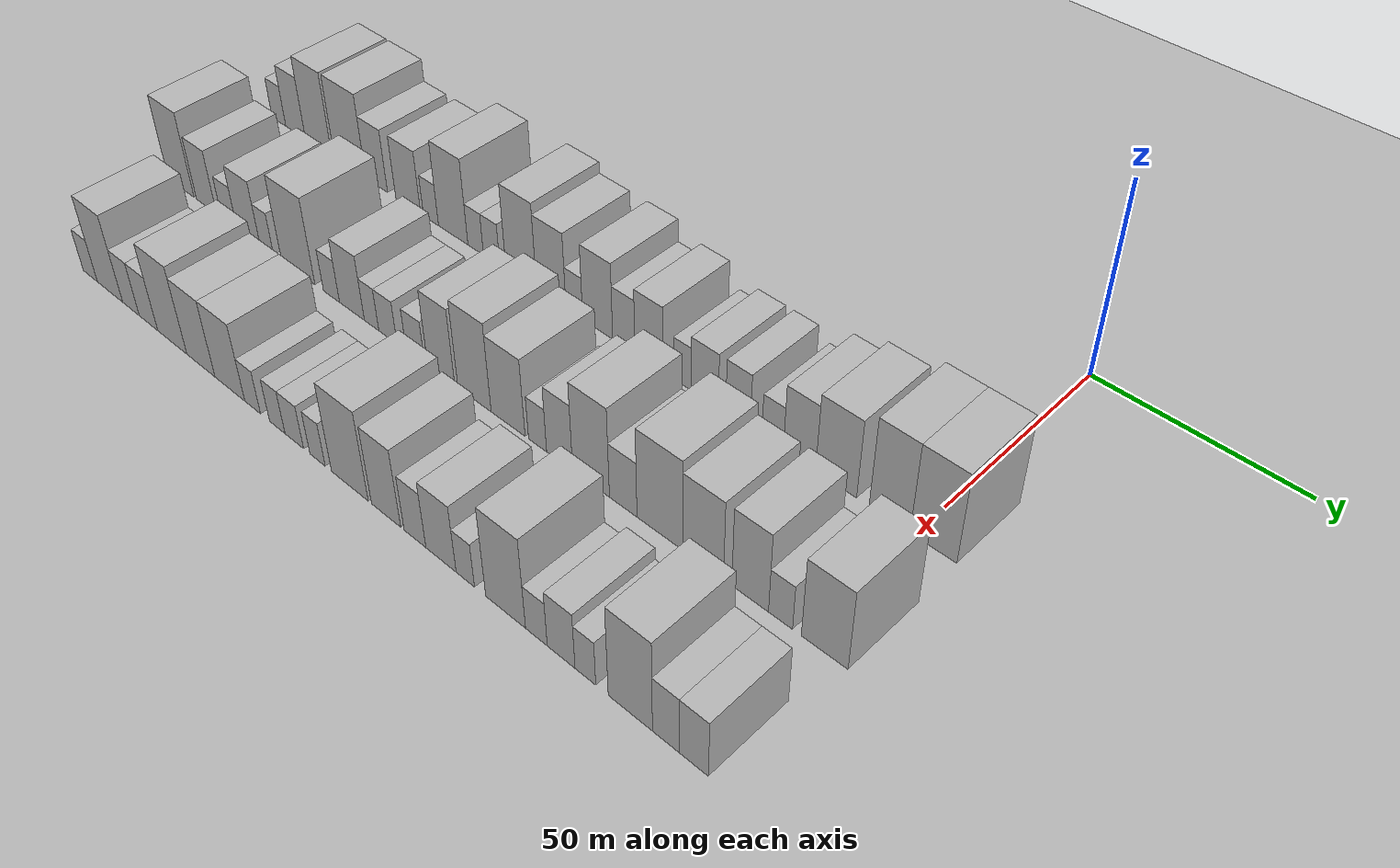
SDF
<sdf version="1.6">
 <world name="default">
  <include><name>ground_plane_1</name><uri>model://HANNAS_ground_plane</uri></include>
  <include>
   <name>ground_plane_2</name>
   <uri>model://HANNAS_ground_plane</uri>
   <pose>100 0 0  0 0 0</pose>
  </include>
  <model name="building_37">
   <static>1</static>
   <pose>50.0000 -194.2799 0 0.000000 0.000000 0.000000</pose>
   <link name="link">
    <pose>0 0 6.00 0 0 0</pose>
    <collision name="collision"><geometry><box><size>20.0000 5.5302 12.0000</size></box></geometry></collision>
    <visual name="visual">
     <cast_shadows>0</cast_shadows>
     <geometry><box><size>20.0000 5.5302 12.0000</size></box></geometry>
     <material>
      <script>
       <uri>model://HANNAS_wall/materials/scripts</uri>
       <uri>model://HANNAS_wall/materials/textures</uri>
       <name>vrc/HANNAS_wall</name>
      </script>
     </material>
    </visual>
   </link>
  </model>
  <model name="building_38">
   <static>1</static>
   <pose>50.0000 -187.5886 0 0.000000 0.000000 0.000000</pose>
   <link name="link">
    <pose>0 0 9.00 0 0 0</pose>
    <collision name="collision"><geometry><box><size>20.0000 7.8523 18.0000</size></box></geometry></collision>
    <visual name="visual">
     <cast_shadows>0</cast_shadows>
     <geometry><box><size>20.0000 7.8523 18.0000</size></box></geometry>
     <material>
      <script>
       <uri>model://HANNAS_wall/materials/scripts</uri>
       <uri>model://HANNAS_wall/materials/textures</uri>
       <name>vrc/HANNAS_wall</name>
      </script>
     </material>
    </visual>
   </link>
  </model>
  <model name="building_39">
   <static>1</static>
   <pose>50.0000 -178.5077 0 0.000000 0.000000 0.000000</pose>
   <link name="link">
    <pose>0 0 12.00 0 0 0</pose>
    <collision name="collision"><geometry><box><size>20.0000 10.3095 24.0000</size></box></geometry></collision>
    <visual name="visual">
     <cast_shadows>0</cast_shadows>
     <geometry><box><size>20.0000 10.3095 24.0000</size></box></geometry>
     <material>
      <script>
       <uri>model://HANNAS_wall/materials/scripts</uri>
       <uri>model://HANNAS_wall/materials/textures</uri>
       <name>vrc/HANNAS_wall</name>
      </script>
     </material>
    </visual>
   </link>
  </model>
  <model name="building_40">
   <static>1</static>
   <pose>50.0000 -166.3984 0 0.000000 0.000000 0.000000</pose>
   <link name="link">
    <pose>0 0 12.00 0 0 0</pose>
    <collision name="collision"><geometry><box><size>20.0000 11.9091 24.0000</size></box></geometry></collision>
    <visual name="visual">
     <cast_shadows>0</cast_shadows>
     <geometry><box><size>20.0000 11.9091 24.0000</size></box></geometry>
     <material>
      <script>
       <uri>model://HANNAS_wall/materials/scripts</uri>
       <uri>model://HANNAS_wall/materials/textures</uri>
       <name>vrc/HANNAS_wall</name>
      </script>
     </material>
    </visual>
   </link>
  </model>
  <model name="building_41">
   <static>1</static>
   <pose>50.0000 -156.4728 0 0.000000 0.000000 0.000000</pose>
   <link name="link">
    <pose>0 0 9.00 0 0 0</pose>
    <collision name="collision"><geometry><box><size>20.0000 7.9420 18.0000</size></box></geometry></collision>
    <visual name="visual">
     <cast_shadows>0</cast_shadows>
     <geometry><box><size>20.0000 7.9420 18.0000</size></box></geometry>
     <material>
      <script>
       <uri>model://HANNAS_wall/materials/scripts</uri>
       <uri>model://HANNAS_wall/materials/textures</uri>
       <name>vrc/HANNAS_wall</name>
      </script>
     </material>
    </visual>
   </link>
  </model>
  <model name="building_42">
   <static>1</static>
   <pose>50.0000 -145.0451 0 0.000000 0.000000 0.000000</pose>
   <link name="link">
    <pose>0 0 9.00 0 0 0</pose>
    <collision name="collision"><geometry><box><size>20.0000 8.9133 18.0000</size></box></geometry></collision>
    <visual name="visual">
     <cast_shadows>0</cast_shadows>
     <geometry><box><size>20.0000 8.9133 18.0000</size></box></geometry>
     <material>
      <script>
       <uri>model://HANNAS_wall/materials/scripts</uri>
       <uri>model://HANNAS_wall/materials/textures</uri>
       <name>vrc/HANNAS_wall</name>
      </script>
     </material>
    </visual>
   </link>
  </model>
  <model name="building_43">
   <static>1</static>
   <pose>50.0000 -136.9729 0 0.000000 0.000000 0.000000</pose>
   <link name="link">
    <pose>0 0 6.00 0 0 0</pose>
    <collision name="collision"><geometry><box><size>20.0000 5.2310 12.0000</size></box></geometry></collision>
    <visual name="visual">
     <cast_shadows>0</cast_shadows>
     <geometry><box><size>20.0000 5.2310 12.0000</size></box></geometry>
     <material>
      <script>
       <uri>model://HANNAS_wall/materials/scripts</uri>
       <uri>model://HANNAS_wall/materials/textures</uri>
       <name>vrc/HANNAS_wall</name>
      </script>
     </material>
    </visual>
   </link>
  </model>
  <model name="building_44">
   <static>1</static>
   <pose>50.0000 -129.3180 0 0.000000 0.000000 0.000000</pose>
   <link name="link">
    <pose>0 0 12.00 0 0 0</pose>
    <collision name="collision"><geometry><box><size>20.0000 10.0789 24.0000</size></box></geometry></collision>
    <visual name="visual">
     <cast_shadows>0</cast_shadows>
     <geometry><box><size>20.0000 10.0789 24.0000</size></box></geometry>
     <material>
      <script>
       <uri>model://HANNAS_wall/materials/scripts</uri>
       <uri>model://HANNAS_wall/materials/textures</uri>
       <name>vrc/HANNAS_wall</name>
      </script>
     </material>
    </visual>
   </link>
  </model>
  <model name="building_45">
   <static>1</static>
   <pose>50.0000 -121.6777 0 0.000000 0.000000 0.000000</pose>
   <link name="link">
    <pose>0 0 6.00 0 0 0</pose>
    <collision name="collision"><geometry><box><size>20.0000 5.2017 12.0000</size></box></geometry></collision>
    <visual name="visual">
     <cast_shadows>0</cast_shadows>
     <geometry><box><size>20.0000 5.2017 12.0000</size></box></geometry>
     <material>
      <script>
       <uri>model://HANNAS_wall/materials/scripts</uri>
       <uri>model://HANNAS_wall/materials/textures</uri>
       <name>vrc/HANNAS_wall</name>
      </script>
     </material>
    </visual>
   </link>
  </model>
  <model name="building_46">
   <static>1</static>
   <pose>50.0000 -116.3728 0 0.000000 0.000000 0.000000</pose>
   <link name="link">
    <pose>0 0 6.00 0 0 0</pose>
    <collision name="collision"><geometry><box><size>20.0000 5.4082 12.0000</size></box></geometry></collision>
    <visual name="visual">
     <cast_shadows>0</cast_shadows>
     <geometry><box><size>20.0000 5.4082 12.0000</size></box></geometry>
     <material>
      <script>
       <uri>model://HANNAS_wall/materials/scripts</uri>
       <uri>model://HANNAS_wall/materials/textures</uri>
       <name>vrc/HANNAS_wall</name>
      </script>
     </material>
    </visual>
   </link>
  </model>
  <model name="building_47">
   <static>1</static>
   <pose>50.0000 -106.7435 0 0.000000 0.000000 0.000000</pose>
   <link name="link">
    <pose>0 0 12.00 0 0 0</pose>
    <collision name="collision"><geometry><box><size>20.0000 9.8505 24.0000</size></box></geometry></collision>
    <visual name="visual">
     <cast_shadows>0</cast_shadows>
     <geometry><box><size>20.0000 9.8505 24.0000</size></box></geometry>
     <material>
      <script>
       <uri>model://HANNAS_wall/materials/scripts</uri>
       <uri>model://HANNAS_wall/materials/textures</uri>
       <name>vrc/HANNAS_wall</name>
      </script>
     </material>
    </visual>
   </link>
  </model>
  <model name="building_48">
   <static>1</static>
   <pose>50.0000 -97.2325 0 0.000000 0.000000 0.000000</pose>
   <link name="link">
    <pose>0 0 10.50 0 0 0</pose>
    <collision name="collision"><geometry><box><size>20.0000 9.1715 21.0000</size></box></geometry></collision>
    <visual name="visual">
     <cast_shadows>0</cast_shadows>
     <geometry><box><size>20.0000 9.1715 21.0000</size></box></geometry>
     <material>
      <script>
       <uri>model://HANNAS_wall/materials/scripts</uri>
       <uri>model://HANNAS_wall/materials/textures</uri>
       <name>vrc/HANNAS_wall</name>
      </script>
     </material>
    </visual>
   </link>
  </model>
  <model name="building_49">
   <static>1</static>
   <pose>50.0000 -90.0845 0 0.000000 0.000000 0.000000</pose>
   <link name="link">
    <pose>0 0 6.00 0 0 0</pose>
    <collision name="collision"><geometry><box><size>20.0000 5.1245 12.0000</size></box></geometry></collision>
    <visual name="visual">
     <cast_shadows>0</cast_shadows>
     <geometry><box><size>20.0000 5.1245 12.0000</size></box></geometry>
     <material>
      <script>
       <uri>model://HANNAS_wall/materials/scripts</uri>
       <uri>model://HANNAS_wall/materials/textures</uri>
       <name>vrc/HANNAS_wall</name>
      </script>
     </material>
    </visual>
   </link>
  </model>
  <model name="building_50">
   <static>1</static>
   <pose>50.0000 -83.0336 0 0.000000 0.000000 0.000000</pose>
   <link name="link">
    <pose>0 0 10.50 0 0 0</pose>
    <collision name="collision"><geometry><box><size>20.0000 8.9772 21.0000</size></box></geometry></collision>
    <visual name="visual">
     <cast_shadows>0</cast_shadows>
     <geometry><box><size>20.0000 8.9772 21.0000</size></box></geometry>
     <material>
      <script>
       <uri>model://HANNAS_wall/materials/scripts</uri>
       <uri>model://HANNAS_wall/materials/textures</uri>
       <name>vrc/HANNAS_wall</name>
      </script>
     </material>
    </visual>
   </link>
  </model>
  <model name="building_51">
   <static>1</static>
   <pose>50.0000 -75.2911 0 0.000000 0.000000 0.000000</pose>
   <link name="link">
    <pose>0 0 7.50 0 0 0</pose>
    <collision name="collision"><geometry><box><size>20.0000 6.5078 15.0000</size></box></geometry></collision>
    <visual name="visual">
     <cast_shadows>0</cast_shadows>
     <geometry><box><size>20.0000 6.5078 15.0000</size></box></geometry>
     <material>
      <script>
       <uri>model://HANNAS_wall/materials/scripts</uri>
       <uri>model://HANNAS_wall/materials/textures</uri>
       <name>vrc/HANNAS_wall</name>
      </script>
     </material>
    </visual>
   </link>
  </model>
  <model name="building_52">
   <static>1</static>
   <pose>50.0000 -68.0344 0 0.000000 0.000000 0.000000</pose>
   <link name="link">
    <pose>0 0 9.00 0 0 0</pose>
    <collision name="collision"><geometry><box><size>20.0000 8.0055 18.0000</size></box></geometry></collision>
    <visual name="visual">
     <cast_shadows>0</cast_shadows>
     <geometry><box><size>20.0000 8.0055 18.0000</size></box></geometry>
     <material>
      <script>
       <uri>model://HANNAS_wall/materials/scripts</uri>
       <uri>model://HANNAS_wall/materials/textures</uri>
       <name>vrc/HANNAS_wall</name>
      </script>
     </material>
    </visual>
   </link>
  </model>
  <model name="building_53">
   <static>1</static>
   <pose>50.0000 -58.5989 0 0.000000 0.000000 0.000000</pose>
   <link name="link">
    <pose>0 0 6.00 0 0 0</pose>
    <collision name="collision"><geometry><box><size>20.0000 4.8654 12.0000</size></box></geometry></collision>
    <visual name="visual">
     <cast_shadows>0</cast_shadows>
     <geometry><box><size>20.0000 4.8654 12.0000</size></box></geometry>
     <material>
      <script>
       <uri>model://HANNAS_wall/materials/scripts</uri>
       <uri>model://HANNAS_wall/materials/textures</uri>
       <name>vrc/HANNAS_wall</name>
      </script>
     </material>
    </visual>
   </link>
  </model>
  <model name="building_54">
   <static>1</static>
   <pose>50.0000 -52.4347 0 0.000000 0.000000 0.000000</pose>
   <link name="link">
    <pose>0 0 7.50 0 0 0</pose>
    <collision name="collision"><geometry><box><size>20.0000 7.4630 15.0000</size></box></geometry></collision>
    <visual name="visual">
     <cast_shadows>0</cast_shadows>
     <geometry><box><size>20.0000 7.4630 15.0000</size></box></geometry>
     <material>
      <script>
       <uri>model://HANNAS_wall/materials/scripts</uri>
       <uri>model://HANNAS_wall/materials/textures</uri>
       <name>vrc/HANNAS_wall</name>
      </script>
     </material>
    </visual>
   </link>
  </model>
  <model name="building_55">
   <static>1</static>
   <pose>50.0000 -43.4236 0 0.000000 0.000000 0.000000</pose>
   <link name="link">
    <pose>0 0 7.50 0 0 0</pose>
    <collision name="collision"><geometry><box><size>20.0000 6.5594 15.0000</size></box></geometry></collision>
    <visual name="visual">
     <cast_shadows>0</cast_shadows>
     <geometry><box><size>20.0000 6.5594 15.0000</size></box></geometry>
     <material>
      <script>
       <uri>model://HANNAS_wall/materials/scripts</uri>
       <uri>model://HANNAS_wall/materials/textures</uri>
       <name>vrc/HANNAS_wall</name>
      </script>
     </material>
    </visual>
   </link>
  </model>
  <model name="building_56">
   <static>1</static>
   <pose>50.0000 -34.3570 0 0.000000 0.000000 0.000000</pose>
   <link name="link">
    <pose>0 0 6.00 0 0 0</pose>
    <collision name="collision"><geometry><box><size>20.0000 5.5738 12.0000</size></box></geometry></collision>
    <visual name="visual">
     <cast_shadows>0</cast_shadows>
     <geometry><box><size>20.0000 5.5738 12.0000</size></box></geometry>
     <material>
      <script>
       <uri>model://HANNAS_wall/materials/scripts</uri>
       <uri>model://HANNAS_wall/materials/textures</uri>
       <name>vrc/HANNAS_wall</name>
      </script>
     </material>
    </visual>
   </link>
  </model>
  <model name="building_57">
   <static>1</static>
   <pose>50.0000 -27.4977 0 0.000000 0.000000 0.000000</pose>
   <link name="link">
    <pose>0 0 9.00 0 0 0</pose>
    <collision name="collision"><geometry><box><size>20.0000 8.1449 18.0000</size></box></geometry></collision>
    <visual name="visual">
     <cast_shadows>0</cast_shadows>
     <geometry><box><size>20.0000 8.1449 18.0000</size></box></geometry>
     <material>
      <script>
       <uri>model://HANNAS_wall/materials/scripts</uri>
       <uri>model://HANNAS_wall/materials/textures</uri>
       <name>vrc/HANNAS_wall</name>
      </script>
     </material>
    </visual>
   </link>
  </model>
  <model name="building_58">
   <static>1</static>
   <pose>50.0000 -18.3838 0 0.000000 0.000000 0.000000</pose>
   <link name="link">
    <pose>0 0 10.50 0 0 0</pose>
    <collision name="collision"><geometry><box><size>20.0000 10.0829 21.0000</size></box></geometry></collision>
    <visual name="visual">
     <cast_shadows>0</cast_shadows>
     <geometry><box><size>20.0000 10.0829 21.0000</size></box></geometry>
     <material>
      <script>
       <uri>model://HANNAS_wall/materials/scripts</uri>
       <uri>model://HANNAS_wall/materials/textures</uri>
       <name>vrc/HANNAS_wall</name>
      </script>
     </material>
    </visual>
   </link>
  </model>
  <model name="building_59">
   <static>1</static>
   <pose>50.0000 -5.5306 0 0.000000 0.000000 0.000000</pose>
   <link name="link">
    <pose>0 0 12.00 0 0 0</pose>
    <collision name="collision"><geometry><box><size>20.0000 9.6235 24.0000</size></box></geometry></collision>
    <visual name="visual">
     <cast_shadows>0</cast_shadows>
     <geometry><box><size>20.0000 9.6235 24.0000</size></box></geometry>
     <material>
      <script>
       <uri>model://HANNAS_wall/materials/scripts</uri>
       <uri>model://HANNAS_wall/materials/textures</uri>
       <name>vrc/HANNAS_wall</name>
      </script>
     </material>
    </visual>
   </link>
  </model>
  <model name="building_60">
   <static>1</static>
   <pose>50.0000 4.6134 0 0.000000 0.000000 0.000000</pose>
   <link name="link">
    <pose>0 0 12.00 0 0 0</pose>
    <collision name="collision"><geometry><box><size>20.0000 10.6645 24.0000</size></box></geometry></collision>
    <visual name="visual">
     <cast_shadows>0</cast_shadows>
     <geometry><box><size>20.0000 10.6645 24.0000</size></box></geometry>
     <material>
      <script>
       <uri>model://HANNAS_wall/materials/scripts</uri>
       <uri>model://HANNAS_wall/materials/textures</uri>
       <name>vrc/HANNAS_wall</name>
      </script>
     </material>
    </visual>
   </link>
  </model>
  <model name="building_160">
   <static>1</static>
   <pose>82.0000 -188.8581 0 0.000000 0.000000 0.000000</pose>
   <link name="link">
    <pose>0 0 12.00 0 0 0</pose>
    <collision name="collision"><geometry><box><size>20.0000 10.4176 24.0000</size></box></geometry></collision>
    <visual name="visual">
     <cast_shadows>0</cast_shadows>
     <geometry><box><size>20.0000 10.4176 24.0000</size></box></geometry>
     <material>
      <script>
       <uri>model://HANNAS_wall/materials/scripts</uri>
       <uri>model://HANNAS_wall/materials/textures</uri>
       <name>vrc/HANNAS_wall</name>
      </script>
     </material>
    </visual>
   </link>
  </model>
  <model name="building_161">
   <static>1</static>
   <pose>82.0000 -178.6854 0 0.000000 0.000000 0.000000</pose>
   <link name="link">
    <pose>0 0 9.00 0 0 0</pose>
    <collision name="collision"><geometry><box><size>20.0000 7.9278 18.0000</size></box></geometry></collision>
    <visual name="visual">
     <cast_shadows>0</cast_shadows>
     <geometry><box><size>20.0000 7.9278 18.0000</size></box></geometry>
     <material>
      <script>
       <uri>model://HANNAS_wall/materials/scripts</uri>
       <uri>model://HANNAS_wall/materials/textures</uri>
       <name>vrc/HANNAS_wall</name>
      </script>
     </material>
    </visual>
   </link>
  </model>
  <model name="building_162">
   <static>1</static>
   <pose>82.0000 -169.7646 0 0.000000 0.000000 0.000000</pose>
   <link name="link">
    <pose>0 0 6.00 0 0 0</pose>
    <collision name="collision"><geometry><box><size>20.0000 5.9140 12.0000</size></box></geometry></collision>
    <visual name="visual">
     <cast_shadows>0</cast_shadows>
     <geometry><box><size>20.0000 5.9140 12.0000</size></box></geometry>
     <material>
      <script>
       <uri>model://HANNAS_wall/materials/scripts</uri>
       <uri>model://HANNAS_wall/materials/textures</uri>
       <name>vrc/HANNAS_wall</name>
      </script>
     </material>
    </visual>
   </link>
  </model>
  <model name="building_163">
   <static>1</static>
   <pose>82.0000 -162.4492 0 0.000000 0.000000 0.000000</pose>
   <link name="link">
    <pose>0 0 9.00 0 0 0</pose>
    <collision name="collision"><geometry><box><size>20.0000 8.7168 18.0000</size></box></geometry></collision>
    <visual name="visual">
     <cast_shadows>0</cast_shadows>
     <geometry><box><size>20.0000 8.7168 18.0000</size></box></geometry>
     <material>
      <script>
       <uri>model://HANNAS_wall/materials/scripts</uri>
       <uri>model://HANNAS_wall/materials/textures</uri>
       <name>vrc/HANNAS_wall</name>
      </script>
     </material>
    </visual>
   </link>
  </model>
  <model name="building_164">
   <static>1</static>
   <pose>82.0000 -155.5896 0 0.000000 0.000000 0.000000</pose>
   <link name="link">
    <pose>0 0 6.00 0 0 0</pose>
    <collision name="collision"><geometry><box><size>20.0000 5.0024 12.0000</size></box></geometry></collision>
    <visual name="visual">
     <cast_shadows>0</cast_shadows>
     <geometry><box><size>20.0000 5.0024 12.0000</size></box></geometry>
     <material>
      <script>
       <uri>model://HANNAS_wall/materials/scripts</uri>
       <uri>model://HANNAS_wall/materials/textures</uri>
       <name>vrc/HANNAS_wall</name>
      </script>
     </material>
    </visual>
   </link>
  </model>
  <model name="building_165">
   <static>1</static>
   <pose>82.0000 -144.1120 0 0.000000 0.000000 0.000000</pose>
   <link name="link">
    <pose>0 0 12.00 0 0 0</pose>
    <collision name="collision"><geometry><box><size>20.0000 11.9527 24.0000</size></box></geometry></collision>
    <visual name="visual">
     <cast_shadows>0</cast_shadows>
     <geometry><box><size>20.0000 11.9527 24.0000</size></box></geometry>
     <material>
      <script>
       <uri>model://HANNAS_wall/materials/scripts</uri>
       <uri>model://HANNAS_wall/materials/textures</uri>
       <name>vrc/HANNAS_wall</name>
      </script>
     </material>
    </visual>
   </link>
  </model>
  <model name="building_166">
   <static>1</static>
   <pose>82.0000 -132.3422 0 0.000000 0.000000 0.000000</pose>
   <link name="link">
    <pose>0 0 6.00 0 0 0</pose>
    <collision name="collision"><geometry><box><size>20.0000 5.5869 12.0000</size></box></geometry></collision>
    <visual name="visual">
     <cast_shadows>0</cast_shadows>
     <geometry><box><size>20.0000 5.5869 12.0000</size></box></geometry>
     <material>
      <script>
       <uri>model://HANNAS_wall/materials/scripts</uri>
       <uri>model://HANNAS_wall/materials/textures</uri>
       <name>vrc/HANNAS_wall</name>
      </script>
     </material>
    </visual>
   </link>
  </model>
  <model name="building_167">
   <static>1</static>
   <pose>82.0000 -125.3173 0 0.000000 0.000000 0.000000</pose>
   <link name="link">
    <pose>0 0 9.00 0 0 0</pose>
    <collision name="collision"><geometry><box><size>20.0000 8.4630 18.0000</size></box></geometry></collision>
    <visual name="visual">
     <cast_shadows>0</cast_shadows>
     <geometry><box><size>20.0000 8.4630 18.0000</size></box></geometry>
     <material>
      <script>
       <uri>model://HANNAS_wall/materials/scripts</uri>
       <uri>model://HANNAS_wall/materials/textures</uri>
       <name>vrc/HANNAS_wall</name>
      </script>
     </material>
    </visual>
   </link>
  </model>
  <model name="building_168">
   <static>1</static>
   <pose>82.0000 -118.6710 0 0.000000 0.000000 0.000000</pose>
   <link name="link">
    <pose>0 0 6.00 0 0 0</pose>
    <collision name="collision"><geometry><box><size>20.0000 4.8297 12.0000</size></box></geometry></collision>
    <visual name="visual">
     <cast_shadows>0</cast_shadows>
     <geometry><box><size>20.0000 4.8297 12.0000</size></box></geometry>
     <material>
      <script>
       <uri>model://HANNAS_wall/materials/scripts</uri>
       <uri>model://HANNAS_wall/materials/textures</uri>
       <name>vrc/HANNAS_wall</name>
      </script>
     </material>
    </visual>
   </link>
  </model>
  <model name="building_169">
   <static>1</static>
   <pose>82.0000 -113.2681 0 0.000000 0.000000 0.000000</pose>
   <link name="link">
    <pose>0 0 6.00 0 0 0</pose>
    <collision name="collision"><geometry><box><size>20.0000 5.9760 12.0000</size></box></geometry></collision>
    <visual name="visual">
     <cast_shadows>0</cast_shadows>
     <geometry><box><size>20.0000 5.9760 12.0000</size></box></geometry>
     <material>
      <script>
       <uri>model://HANNAS_wall/materials/scripts</uri>
       <uri>model://HANNAS_wall/materials/textures</uri>
       <name>vrc/HANNAS_wall</name>
      </script>
     </material>
    </visual>
   </link>
  </model>
  <model name="building_170">
   <static>1</static>
   <pose>82.0000 -104.3224 0 0.000000 0.000000 0.000000</pose>
   <link name="link">
    <pose>0 0 6.00 0 0 0</pose>
    <collision name="collision"><geometry><box><size>20.0000 5.9154 12.0000</size></box></geometry></collision>
    <visual name="visual">
     <cast_shadows>0</cast_shadows>
     <geometry><box><size>20.0000 5.9154 12.0000</size></box></geometry>
     <material>
      <script>
       <uri>model://HANNAS_wall/materials/scripts</uri>
       <uri>model://HANNAS_wall/materials/textures</uri>
       <name>vrc/HANNAS_wall</name>
      </script>
     </material>
    </visual>
   </link>
  </model>
  <model name="building_171">
   <static>1</static>
   <pose>82.0000 -96.1607 0 0.000000 0.000000 0.000000</pose>
   <link name="link">
    <pose>0 0 10.50 0 0 0</pose>
    <collision name="collision"><geometry><box><size>20.0000 8.4081 21.0000</size></box></geometry></collision>
    <visual name="visual">
     <cast_shadows>0</cast_shadows>
     <geometry><box><size>20.0000 8.4081 21.0000</size></box></geometry>
     <material>
      <script>
       <uri>model://HANNAS_wall/materials/scripts</uri>
       <uri>model://HANNAS_wall/materials/textures</uri>
       <name>vrc/HANNAS_wall</name>
      </script>
     </material>
    </visual>
   </link>
  </model>
  <model name="building_172">
   <static>1</static>
   <pose>82.0000 -85.9453 0 0.000000 0.000000 0.000000</pose>
   <link name="link">
    <pose>0 0 12.00 0 0 0</pose>
    <collision name="collision"><geometry><box><size>20.0000 10.0226 24.0000</size></box></geometry></collision>
    <visual name="visual">
     <cast_shadows>0</cast_shadows>
     <geometry><box><size>20.0000 10.0226 24.0000</size></box></geometry>
     <material>
      <script>
       <uri>model://HANNAS_wall/materials/scripts</uri>
       <uri>model://HANNAS_wall/materials/textures</uri>
       <name>vrc/HANNAS_wall</name>
      </script>
     </material>
    </visual>
   </link>
  </model>
  <model name="building_173">
   <static>1</static>
   <pose>82.0000 -75.9576 0 0.000000 0.000000 0.000000</pose>
   <link name="link">
    <pose>0 0 10.50 0 0 0</pose>
    <collision name="collision"><geometry><box><size>20.0000 9.9529 21.0000</size></box></geometry></collision>
    <visual name="visual">
     <cast_shadows>0</cast_shadows>
     <geometry><box><size>20.0000 9.9529 21.0000</size></box></geometry>
     <material>
      <script>
       <uri>model://HANNAS_wall/materials/scripts</uri>
       <uri>model://HANNAS_wall/materials/textures</uri>
       <name>vrc/HANNAS_wall</name>
      </script>
     </material>
    </visual>
   </link>
  </model>
  <model name="building_174">
   <static>1</static>
   <pose>82.0000 -67.3988 0 0.000000 0.000000 0.000000</pose>
   <link name="link">
    <pose>0 0 6.00 0 0 0</pose>
    <collision name="collision"><geometry><box><size>20.0000 5.1645 12.0000</size></box></geometry></collision>
    <visual name="visual">
     <cast_shadows>0</cast_shadows>
     <geometry><box><size>20.0000 5.1645 12.0000</size></box></geometry>
     <material>
      <script>
       <uri>model://HANNAS_wall/materials/scripts</uri>
       <uri>model://HANNAS_wall/materials/textures</uri>
       <name>vrc/HANNAS_wall</name>
      </script>
     </material>
    </visual>
   </link>
  </model>
  <model name="building_175">
   <static>1</static>
   <pose>82.0000 -61.1639 0 0.000000 0.000000 0.000000</pose>
   <link name="link">
    <pose>0 0 9.00 0 0 0</pose>
    <collision name="collision"><geometry><box><size>20.0000 7.3053 18.0000</size></box></geometry></collision>
    <visual name="visual">
     <cast_shadows>0</cast_shadows>
     <geometry><box><size>20.0000 7.3053 18.0000</size></box></geometry>
     <material>
      <script>
       <uri>model://HANNAS_wall/materials/scripts</uri>
       <uri>model://HANNAS_wall/materials/textures</uri>
       <name>vrc/HANNAS_wall</name>
      </script>
     </material>
    </visual>
   </link>
  </model>
  <model name="building_176">
   <static>1</static>
   <pose>82.0000 -52.5127 0 0.000000 0.000000 0.000000</pose>
   <link name="link">
    <pose>0 0 12.00 0 0 0</pose>
    <collision name="collision"><geometry><box><size>20.0000 9.9972 24.0000</size></box></geometry></collision>
    <visual name="visual">
     <cast_shadows>0</cast_shadows>
     <geometry><box><size>20.0000 9.9972 24.0000</size></box></geometry>
     <material>
      <script>
       <uri>model://HANNAS_wall/materials/scripts</uri>
       <uri>model://HANNAS_wall/materials/textures</uri>
       <name>vrc/HANNAS_wall</name>
      </script>
     </material>
    </visual>
   </link>
  </model>
  <model name="building_177">
   <static>1</static>
   <pose>82.0000 -43.8719 0 0.000000 0.000000 0.000000</pose>
   <link name="link">
    <pose>0 0 7.50 0 0 0</pose>
    <collision name="collision"><geometry><box><size>20.0000 7.2842 15.0000</size></box></geometry></collision>
    <visual name="visual">
     <cast_shadows>0</cast_shadows>
     <geometry><box><size>20.0000 7.2842 15.0000</size></box></geometry>
     <material>
      <script>
       <uri>model://HANNAS_wall/materials/scripts</uri>
       <uri>model://HANNAS_wall/materials/textures</uri>
       <name>vrc/HANNAS_wall</name>
      </script>
     </material>
    </visual>
   </link>
  </model>
  <model name="building_178">
   <static>1</static>
   <pose>82.0000 -34.3937 0 0.000000 0.000000 0.000000</pose>
   <link name="link">
    <pose>0 0 12.00 0 0 0</pose>
    <collision name="collision"><geometry><box><size>20.0000 11.6722 24.0000</size></box></geometry></collision>
    <visual name="visual">
     <cast_shadows>0</cast_shadows>
     <geometry><box><size>20.0000 11.6722 24.0000</size></box></geometry>
     <material>
      <script>
       <uri>model://HANNAS_wall/materials/scripts</uri>
       <uri>model://HANNAS_wall/materials/textures</uri>
       <name>vrc/HANNAS_wall</name>
      </script>
     </material>
    </visual>
   </link>
  </model>
  <model name="building_179">
   <static>1</static>
   <pose>82.0000 -23.4996 0 0.000000 0.000000 0.000000</pose>
   <link name="link">
    <pose>0 0 10.50 0 0 0</pose>
    <collision name="collision"><geometry><box><size>20.0000 10.1159 21.0000</size></box></geometry></collision>
    <visual name="visual">
     <cast_shadows>0</cast_shadows>
     <geometry><box><size>20.0000 10.1159 21.0000</size></box></geometry>
     <material>
      <script>
       <uri>model://HANNAS_wall/materials/scripts</uri>
       <uri>model://HANNAS_wall/materials/textures</uri>
       <name>vrc/HANNAS_wall</name>
      </script>
     </material>
    </visual>
   </link>
  </model>
  <model name="building_180">
   <static>1</static>
   <pose>82.0000 -12.0725 0 0.000000 0.000000 0.000000</pose>
   <link name="link">
    <pose>0 0 10.50 0 0 0</pose>
    <collision name="collision"><geometry><box><size>20.0000 8.7382 21.0000</size></box></geometry></collision>
    <visual name="visual">
     <cast_shadows>0</cast_shadows>
     <geometry><box><size>20.0000 8.7382 21.0000</size></box></geometry>
     <material>
      <script>
       <uri>model://HANNAS_wall/materials/scripts</uri>
       <uri>model://HANNAS_wall/materials/textures</uri>
       <name>vrc/HANNAS_wall</name>
      </script>
     </material>
    </visual>
   </link>
  </model>
  <model name="building_181">
   <static>1</static>
   <pose>82.0000 -4.9168 0 0.000000 0.000000 0.000000</pose>
   <link name="link">
    <pose>0 0 6.00 0 0 0</pose>
    <collision name="collision"><geometry><box><size>20.0000 5.5732 12.0000</size></box></geometry></collision>
    <visual name="visual">
     <cast_shadows>0</cast_shadows>
     <geometry><box><size>20.0000 5.5732 12.0000</size></box></geometry>
     <material>
      <script>
       <uri>model://HANNAS_wall/materials/scripts</uri>
       <uri>model://HANNAS_wall/materials/textures</uri>
       <name>vrc/HANNAS_wall</name>
      </script>
     </material>
    </visual>
   </link>
  </model>
  <model name="building_182">
   <static>1</static>
   <pose>82.0000 5.0998 0 0.000000 0.000000 0.000000</pose>
   <link name="link">
    <pose>0 0 10.50 0 0 0</pose>
    <collision name="collision"><geometry><box><size>20.0000 10.4600 21.0000</size></box></geometry></collision>
    <visual name="visual">
     <cast_shadows>0</cast_shadows>
     <geometry><box><size>20.0000 10.4600 21.0000</size></box></geometry>
     <material>
      <script>
       <uri>model://HANNAS_wall/materials/scripts</uri>
       <uri>model://HANNAS_wall/materials/textures</uri>
       <name>vrc/HANNAS_wall</name>
      </script>
     </material>
    </visual>
   </link>
  </model>
  <model name="building_273">
   <static>1</static>
   <pose>114.0000 -176.2179 0 0.000000 0.000000 0.000000</pose>
   <link name="link">
    <pose>0 0 6.00 0 0 0</pose>
    <collision name="collision"><geometry><box><size>20.0000 5.6674 12.0000</size></box></geometry></collision>
    <visual name="visual">
     <cast_shadows>0</cast_shadows>
     <geometry><box><size>20.0000 5.6674 12.0000</size></box></geometry>
     <material>
      <script>
       <uri>model://HANNAS_wall/materials/scripts</uri>
       <uri>model://HANNAS_wall/materials/textures</uri>
       <name>vrc/HANNAS_wall</name>
      </script>
     </material>
    </visual>
   </link>
  </model>
  <model name="building_274">
   <static>1</static>
   <pose>114.0000 -168.4222 0 0.000000 0.000000 0.000000</pose>
   <link name="link">
    <pose>0 0 12.00 0 0 0</pose>
    <collision name="collision"><geometry><box><size>20.0000 9.9239 24.0000</size></box></geometry></collision>
    <visual name="visual">
     <cast_shadows>0</cast_shadows>
     <geometry><box><size>20.0000 9.9239 24.0000</size></box></geometry>
     <material>
      <script>
       <uri>model://HANNAS_wall/materials/scripts</uri>
       <uri>model://HANNAS_wall/materials/textures</uri>
       <name>vrc/HANNAS_wall</name>
      </script>
     </material>
    </visual>
   </link>
  </model>
  <model name="building_275">
   <static>1</static>
   <pose>114.0000 -160.2711 0 0.000000 0.000000 0.000000</pose>
   <link name="link">
    <pose>0 0 7.50 0 0 0</pose>
    <collision name="collision"><geometry><box><size>20.0000 6.3784 15.0000</size></box></geometry></collision>
    <visual name="visual">
     <cast_shadows>0</cast_shadows>
     <geometry><box><size>20.0000 6.3784 15.0000</size></box></geometry>
     <material>
      <script>
       <uri>model://HANNAS_wall/materials/scripts</uri>
       <uri>model://HANNAS_wall/materials/textures</uri>
       <name>vrc/HANNAS_wall</name>
      </script>
     </material>
    </visual>
   </link>
  </model>
  <model name="building_276">
   <static>1</static>
   <pose>114.0000 -153.6203 0 0.000000 0.000000 0.000000</pose>
   <link name="link">
    <pose>0 0 7.50 0 0 0</pose>
    <collision name="collision"><geometry><box><size>20.0000 6.9232 15.0000</size></box></geometry></collision>
    <visual name="visual">
     <cast_shadows>0</cast_shadows>
     <geometry><box><size>20.0000 6.9232 15.0000</size></box></geometry>
     <material>
      <script>
       <uri>model://HANNAS_wall/materials/scripts</uri>
       <uri>model://HANNAS_wall/materials/textures</uri>
       <name>vrc/HANNAS_wall</name>
      </script>
     </material>
    </visual>
   </link>
  </model>
  <model name="building_277">
   <static>1</static>
   <pose>114.0000 -144.8276 0 0.000000 0.000000 0.000000</pose>
   <link name="link">
    <pose>0 0 12.00 0 0 0</pose>
    <collision name="collision"><geometry><box><size>20.0000 10.6622 24.0000</size></box></geometry></collision>
    <visual name="visual">
     <cast_shadows>0</cast_shadows>
     <geometry><box><size>20.0000 10.6622 24.0000</size></box></geometry>
     <material>
      <script>
       <uri>model://HANNAS_wall/materials/scripts</uri>
       <uri>model://HANNAS_wall/materials/textures</uri>
       <name>vrc/HANNAS_wall</name>
      </script>
     </material>
    </visual>
   </link>
  </model>
  <model name="building_278">
   <static>1</static>
   <pose>114.0000 -134.5080 0 0.000000 0.000000 0.000000</pose>
   <link name="link">
    <pose>0 0 10.50 0 0 0</pose>
    <collision name="collision"><geometry><box><size>20.0000 9.9769 21.0000</size></box></geometry></collision>
    <visual name="visual">
     <cast_shadows>0</cast_shadows>
     <geometry><box><size>20.0000 9.9769 21.0000</size></box></geometry>
     <material>
      <script>
       <uri>model://HANNAS_wall/materials/scripts</uri>
       <uri>model://HANNAS_wall/materials/textures</uri>
       <name>vrc/HANNAS_wall</name>
      </script>
     </material>
    </visual>
   </link>
  </model>
  <model name="building_279">
   <static>1</static>
   <pose>114.0000 -124.3840 0 0.000000 0.000000 0.000000</pose>
   <link name="link">
    <pose>0 0 10.50 0 0 0</pose>
    <collision name="collision"><geometry><box><size>20.0000 10.2712 21.0000</size></box></geometry></collision>
    <visual name="visual">
     <cast_shadows>0</cast_shadows>
     <geometry><box><size>20.0000 10.2712 21.0000</size></box></geometry>
     <material>
      <script>
       <uri>model://HANNAS_wall/materials/scripts</uri>
       <uri>model://HANNAS_wall/materials/textures</uri>
       <name>vrc/HANNAS_wall</name>
      </script>
     </material>
    </visual>
   </link>
  </model>
  <model name="building_280">
   <static>1</static>
   <pose>114.0000 -116.6185 0 0.000000 0.000000 0.000000</pose>
   <link name="link">
    <pose>0 0 6.00 0 0 0</pose>
    <collision name="collision"><geometry><box><size>20.0000 5.2597 12.0000</size></box></geometry></collision>
    <visual name="visual">
     <cast_shadows>0</cast_shadows>
     <geometry><box><size>20.0000 5.2597 12.0000</size></box></geometry>
     <material>
      <script>
       <uri>model://HANNAS_wall/materials/scripts</uri>
       <uri>model://HANNAS_wall/materials/textures</uri>
       <name>vrc/HANNAS_wall</name>
      </script>
     </material>
    </visual>
   </link>
  </model>
  <model name="building_281">
   <static>1</static>
   <pose>114.0000 -108.4546 0 0.000000 0.000000 0.000000</pose>
   <link name="link">
    <pose>0 0 6.00 0 0 0</pose>
    <collision name="collision"><geometry><box><size>20.0000 5.0680 12.0000</size></box></geometry></collision>
    <visual name="visual">
     <cast_shadows>0</cast_shadows>
     <geometry><box><size>20.0000 5.0680 12.0000</size></box></geometry>
     <material>
      <script>
       <uri>model://HANNAS_wall/materials/scripts</uri>
       <uri>model://HANNAS_wall/materials/textures</uri>
       <name>vrc/HANNAS_wall</name>
      </script>
     </material>
    </visual>
   </link>
  </model>
  <model name="building_282">
   <static>1</static>
   <pose>114.0000 -102.9294 0 0.000000 0.000000 0.000000</pose>
   <link name="link">
    <pose>0 0 6.00 0 0 0</pose>
    <collision name="collision"><geometry><box><size>20.0000 5.9823 12.0000</size></box></geometry></collision>
    <visual name="visual">
     <cast_shadows>0</cast_shadows>
     <geometry><box><size>20.0000 5.9823 12.0000</size></box></geometry>
     <material>
      <script>
       <uri>model://HANNAS_wall/materials/scripts</uri>
       <uri>model://HANNAS_wall/materials/textures</uri>
       <name>vrc/HANNAS_wall</name>
      </script>
     </material>
    </visual>
   </link>
  </model>
  <model name="building_283">
   <static>1</static>
   <pose>114.0000 -95.5291 0 0.000000 0.000000 0.000000</pose>
   <link name="link">
    <pose>0 0 6.00 0 0 0</pose>
    <collision name="collision"><geometry><box><size>20.0000 4.8183 12.0000</size></box></geometry></collision>
    <visual name="visual">
     <cast_shadows>0</cast_shadows>
     <geometry><box><size>20.0000 4.8183 12.0000</size></box></geometry>
     <material>
      <script>
       <uri>model://HANNAS_wall/materials/scripts</uri>
       <uri>model://HANNAS_wall/materials/textures</uri>
       <name>vrc/HANNAS_wall</name>
      </script>
     </material>
    </visual>
   </link>
  </model>
  <model name="building_284">
   <static>1</static>
   <pose>114.0000 -85.5529 0 0.000000 0.000000 0.000000</pose>
   <link name="link">
    <pose>0 0 12.00 0 0 0</pose>
    <collision name="collision"><geometry><box><size>20.0000 11.1342 24.0000</size></box></geometry></collision>
    <visual name="visual">
     <cast_shadows>0</cast_shadows>
     <geometry><box><size>20.0000 11.1342 24.0000</size></box></geometry>
     <material>
      <script>
       <uri>model://HANNAS_wall/materials/scripts</uri>
       <uri>model://HANNAS_wall/materials/textures</uri>
       <name>vrc/HANNAS_wall</name>
      </script>
     </material>
    </visual>
   </link>
  </model>
  <model name="building_285">
   <static>1</static>
   <pose>114.0000 -74.7078 0 0.000000 0.000000 0.000000</pose>
   <link name="link">
    <pose>0 0 10.50 0 0 0</pose>
    <collision name="collision"><geometry><box><size>20.0000 8.5561 21.0000</size></box></geometry></collision>
    <visual name="visual">
     <cast_shadows>0</cast_shadows>
     <geometry><box><size>20.0000 8.5561 21.0000</size></box></geometry>
     <material>
      <script>
       <uri>model://HANNAS_wall/materials/scripts</uri>
       <uri>model://HANNAS_wall/materials/textures</uri>
       <name>vrc/HANNAS_wall</name>
      </script>
     </material>
    </visual>
   </link>
  </model>
  <model name="building_286">
   <static>1</static>
   <pose>114.0000 -66.3205 0 0.000000 0.000000 0.000000</pose>
   <link name="link">
    <pose>0 0 7.50 0 0 0</pose>
    <collision name="collision"><geometry><box><size>20.0000 6.2184 15.0000</size></box></geometry></collision>
    <visual name="visual">
     <cast_shadows>0</cast_shadows>
     <geometry><box><size>20.0000 6.2184 15.0000</size></box></geometry>
     <material>
      <script>
       <uri>model://HANNAS_wall/materials/scripts</uri>
       <uri>model://HANNAS_wall/materials/textures</uri>
       <name>vrc/HANNAS_wall</name>
      </script>
     </material>
    </visual>
   </link>
  </model>
  <model name="building_287">
   <static>1</static>
   <pose>114.0000 -58.9984 0 0.000000 0.000000 0.000000</pose>
   <link name="link">
    <pose>0 0 9.00 0 0 0</pose>
    <collision name="collision"><geometry><box><size>20.0000 8.4258 18.0000</size></box></geometry></collision>
    <visual name="visual">
     <cast_shadows>0</cast_shadows>
     <geometry><box><size>20.0000 8.4258 18.0000</size></box></geometry>
     <material>
      <script>
       <uri>model://HANNAS_wall/materials/scripts</uri>
       <uri>model://HANNAS_wall/materials/textures</uri>
       <name>vrc/HANNAS_wall</name>
      </script>
     </material>
    </visual>
   </link>
  </model>
  <model name="building_288">
   <static>1</static>
   <pose>114.0000 -52.2848 0 0.000000 0.000000 0.000000</pose>
   <link name="link">
    <pose>0 0 6.00 0 0 0</pose>
    <collision name="collision"><geometry><box><size>20.0000 5.0014 12.0000</size></box></geometry></collision>
    <visual name="visual">
     <cast_shadows>0</cast_shadows>
     <geometry><box><size>20.0000 5.0014 12.0000</size></box></geometry>
     <material>
      <script>
       <uri>model://HANNAS_wall/materials/scripts</uri>
       <uri>model://HANNAS_wall/materials/textures</uri>
       <name>vrc/HANNAS_wall</name>
      </script>
     </material>
    </visual>
   </link>
  </model>
  <model name="building_289">
   <static>1</static>
   <pose>114.0000 -41.5575 0 0.000000 0.000000 0.000000</pose>
   <link name="link">
    <pose>0 0 12.00 0 0 0</pose>
    <collision name="collision"><geometry><box><size>20.0000 10.4532 24.0000</size></box></geometry></collision>
    <visual name="visual">
     <cast_shadows>0</cast_shadows>
     <geometry><box><size>20.0000 10.4532 24.0000</size></box></geometry>
     <material>
      <script>
       <uri>model://HANNAS_wall/materials/scripts</uri>
       <uri>model://HANNAS_wall/materials/textures</uri>
       <name>vrc/HANNAS_wall</name>
      </script>
     </material>
    </visual>
   </link>
  </model>
  <model name="building_290">
   <static>1</static>
   <pose>114.0000 -33.5599 0 0.000000 0.000000 0.000000</pose>
   <link name="link">
    <pose>0 0 6.00 0 0 0</pose>
    <collision name="collision"><geometry><box><size>20.0000 5.5419 12.0000</size></box></geometry></collision>
    <visual name="visual">
     <cast_shadows>0</cast_shadows>
     <geometry><box><size>20.0000 5.5419 12.0000</size></box></geometry>
     <material>
      <script>
       <uri>model://HANNAS_wall/materials/scripts</uri>
       <uri>model://HANNAS_wall/materials/textures</uri>
       <name>vrc/HANNAS_wall</name>
      </script>
     </material>
    </visual>
   </link>
  </model>
  <model name="building_291">
   <static>1</static>
   <pose>114.0000 -27.3322 0 0.000000 0.000000 0.000000</pose>
   <link name="link">
    <pose>0 0 7.50 0 0 0</pose>
    <collision name="collision"><geometry><box><size>20.0000 6.9136 15.0000</size></box></geometry></collision>
    <visual name="visual">
     <cast_shadows>0</cast_shadows>
     <geometry><box><size>20.0000 6.9136 15.0000</size></box></geometry>
     <material>
      <script>
       <uri>model://HANNAS_wall/materials/scripts</uri>
       <uri>model://HANNAS_wall/materials/textures</uri>
       <name>vrc/HANNAS_wall</name>
      </script>
     </material>
    </visual>
   </link>
  </model>
  <model name="building_292">
   <static>1</static>
   <pose>114.0000 -21.3491 0 0.000000 0.000000 0.000000</pose>
   <link name="link">
    <pose>0 0 6.00 0 0 0</pose>
    <collision name="collision"><geometry><box><size>20.0000 5.0526 12.0000</size></box></geometry></collision>
    <visual name="visual">
     <cast_shadows>0</cast_shadows>
     <geometry><box><size>20.0000 5.0526 12.0000</size></box></geometry>
     <material>
      <script>
       <uri>model://HANNAS_wall/materials/scripts</uri>
       <uri>model://HANNAS_wall/materials/textures</uri>
       <name>vrc/HANNAS_wall</name>
      </script>
     </material>
    </visual>
   </link>
  </model>
  <model name="building_293">
   <static>1</static>
   <pose>114.0000 -10.6380 0 0.000000 0.000000 0.000000</pose>
   <link name="link">
    <pose>0 0 12.00 0 0 0</pose>
    <collision name="collision"><geometry><box><size>20.0000 10.3697 24.0000</size></box></geometry></collision>
    <visual name="visual">
     <cast_shadows>0</cast_shadows>
     <geometry><box><size>20.0000 10.3697 24.0000</size></box></geometry>
     <material>
      <script>
       <uri>model://HANNAS_wall/materials/scripts</uri>
       <uri>model://HANNAS_wall/materials/textures</uri>
       <name>vrc/HANNAS_wall</name>
      </script>
     </material>
    </visual>
   </link>
  </model>
  <model name="building_294">
   <static>1</static>
   <pose>114.0000 -2.4286 0 0.000000 0.000000 0.000000</pose>
   <link name="link">
    <pose>0 0 7.50 0 0 0</pose>
    <collision name="collision"><geometry><box><size>20.0000 6.0491 15.0000</size></box></geometry></collision>
    <visual name="visual">
     <cast_shadows>0</cast_shadows>
     <geometry><box><size>20.0000 6.0491 15.0000</size></box></geometry>
     <material>
      <script>
       <uri>model://HANNAS_wall/materials/scripts</uri>
       <uri>model://HANNAS_wall/materials/textures</uri>
       <name>vrc/HANNAS_wall</name>
      </script>
     </material>
    </visual>
   </link>
  </model>
  <model name="building_295">
   <static>1</static>
   <pose>114.0000 3.8559 0 0.000000 0.000000 0.000000</pose>
   <link name="link">
    <pose>0 0 7.50 0 0 0</pose>
    <collision name="collision"><geometry><box><size>20.0000 6.5199 15.0000</size></box></geometry></collision>
    <visual name="visual">
     <cast_shadows>0</cast_shadows>
     <geometry><box><size>20.0000 6.5199 15.0000</size></box></geometry>
     <material>
      <script>
       <uri>model://HANNAS_wall/materials/scripts</uri>
       <uri>model://HANNAS_wall/materials/textures</uri>
       <name>vrc/HANNAS_wall</name>
      </script>
     </material>
    </visual>
   </link>
  </model>
 </world>
</sdf>
